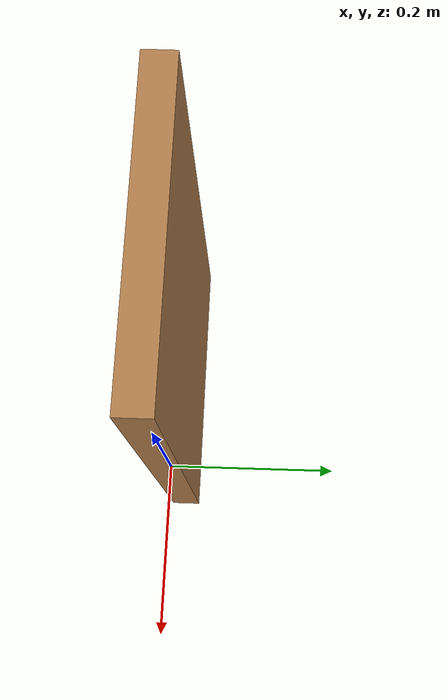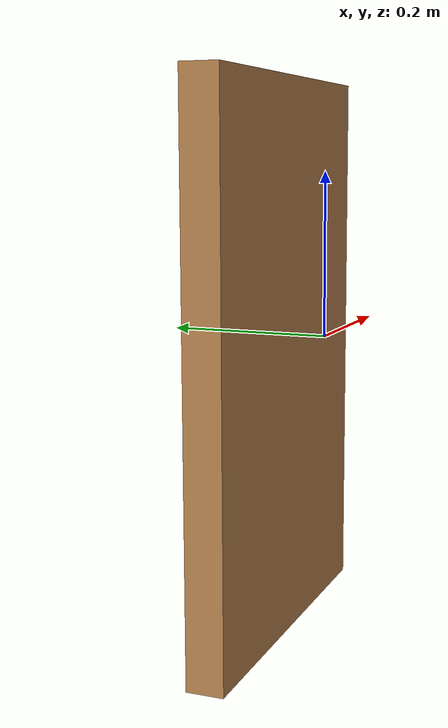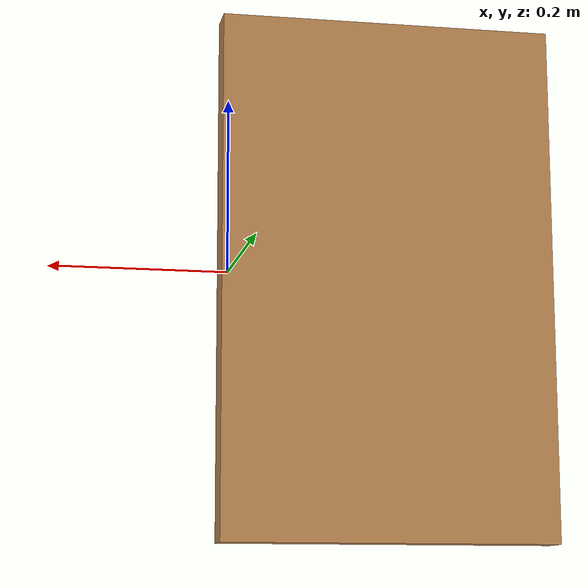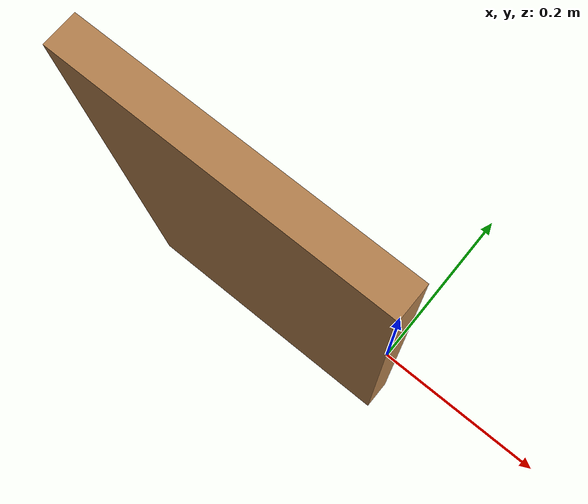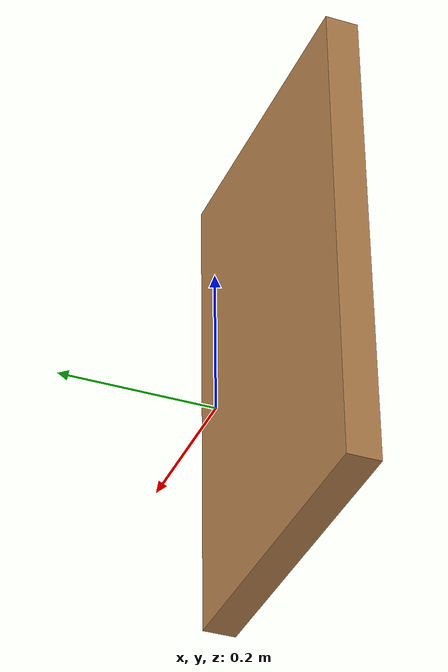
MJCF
<mujoco model="cab_panel_slab">
  <compiler angle="radian"/>
  <asset>
    <texture file="visuals/wood1.png" type="2d" name="tex"/>
    <material name="mat" reflectance="0.1" shininess="0.1" texrepeat="4 4" texuniform="true" texture="tex"/>
  </asset>
  <default>
    <default class="cab">
      <geom group="0" density="10"/>
    </default>
  </default>
  <worldbody>
    <body>
      <body name="object">
        <geom pos="-0.185 -.005 0" size="0.193 0.3 0.02" type="box" material="mat" class="cab" name="door" euler="1.5708 0 0"/>
      </body>
    </body>
  </worldbody>
</mujoco>
